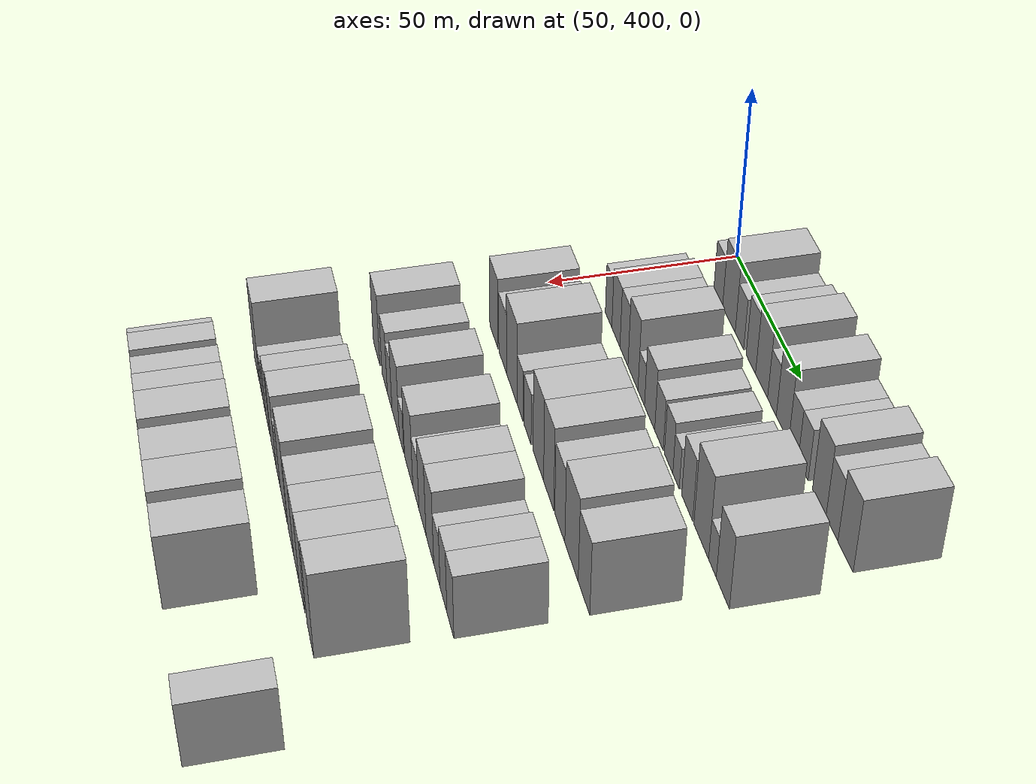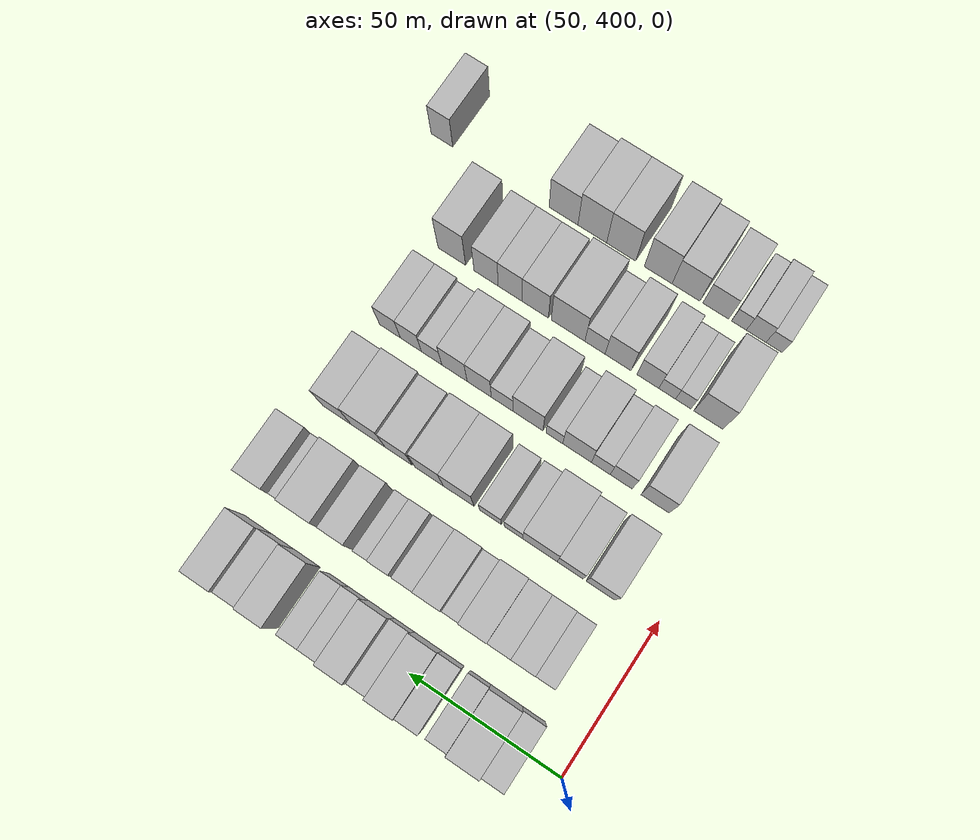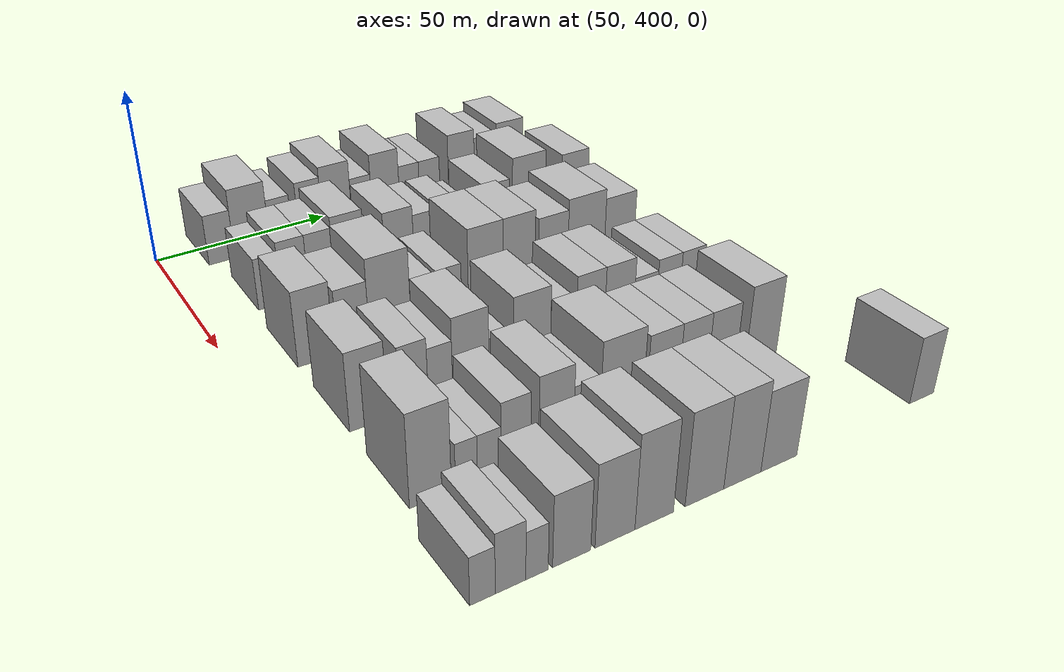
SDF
<sdf version="1.6">
 <world name="default">
  <model name="building_96">
   <static>1</static>
   <pose>50.0000 415.4643 0 0.000000 0.000000 0.000000</pose>
   <link name="link">
    <pose>0 0 7.50 0 0 0</pose>
    <collision name="collision"><geometry><box><size>20.0000 7.4282 15.0000</size></box></geometry></collision>
    <visual name="visual">
     <cast_shadows>0</cast_shadows>
     <geometry><box><size>20.0000 7.4282 15.0000</size></box></geometry>
     <material>
      <script>
       <uri>model://HANNAS_wall/materials/scripts</uri>
       <uri>model://HANNAS_wall/materials/textures</uri>
       <name>vrc/HANNAS_wall</name>
      </script>
     </material>
    </visual>
   </link>
  </model>
  <model name="building_97">
   <static>1</static>
   <pose>50.0000 424.4141 0 0.000000 0.000000 0.000000</pose>
   <link name="link">
    <pose>0 0 10.50 0 0 0</pose>
    <collision name="collision"><geometry><box><size>20.0000 10.4713 21.0000</size></box></geometry></collision>
    <visual name="visual">
     <cast_shadows>0</cast_shadows>
     <geometry><box><size>20.0000 10.4713 21.0000</size></box></geometry>
     <material>
      <script>
       <uri>model://HANNAS_wall/materials/scripts</uri>
       <uri>model://HANNAS_wall/materials/textures</uri>
       <name>vrc/HANNAS_wall</name>
      </script>
     </material>
    </visual>
   </link>
  </model>
  <model name="building_98">
   <static>1</static>
   <pose>50.0000 433.0497 0 0.000000 0.000000 0.000000</pose>
   <link name="link">
    <pose>0 0 7.50 0 0 0</pose>
    <collision name="collision"><geometry><box><size>20.0000 6.7999 15.0000</size></box></geometry></collision>
    <visual name="visual">
     <cast_shadows>0</cast_shadows>
     <geometry><box><size>20.0000 6.7999 15.0000</size></box></geometry>
     <material>
      <script>
       <uri>model://HANNAS_wall/materials/scripts</uri>
       <uri>model://HANNAS_wall/materials/textures</uri>
       <name>vrc/HANNAS_wall</name>
      </script>
     </material>
    </visual>
   </link>
  </model>
  <model name="building_99">
   <static>1</static>
   <pose>50.0000 442.1403 0 0.000000 0.000000 0.000000</pose>
   <link name="link">
    <pose>0 0 9.00 0 0 0</pose>
    <collision name="collision"><geometry><box><size>20.0000 7.3812 18.0000</size></box></geometry></collision>
    <visual name="visual">
     <cast_shadows>0</cast_shadows>
     <geometry><box><size>20.0000 7.3812 18.0000</size></box></geometry>
     <material>
      <script>
       <uri>model://HANNAS_wall/materials/scripts</uri>
       <uri>model://HANNAS_wall/materials/textures</uri>
       <name>vrc/HANNAS_wall</name>
      </script>
     </material>
    </visual>
   </link>
  </model>
  <model name="building_100">
   <static>1</static>
   <pose>50.0000 450.4394 0 0.000000 0.000000 0.000000</pose>
   <link name="link">
    <pose>0 0 10.50 0 0 0</pose>
    <collision name="collision"><geometry><box><size>20.0000 9.2171 21.0000</size></box></geometry></collision>
    <visual name="visual">
     <cast_shadows>0</cast_shadows>
     <geometry><box><size>20.0000 9.2171 21.0000</size></box></geometry>
     <material>
      <script>
       <uri>model://HANNAS_wall/materials/scripts</uri>
       <uri>model://HANNAS_wall/materials/textures</uri>
       <name>vrc/HANNAS_wall</name>
      </script>
     </material>
    </visual>
   </link>
  </model>
  <model name="building_101">
   <static>1</static>
   <pose>50.0000 458.3149 0 0.000000 0.000000 0.000000</pose>
   <link name="link">
    <pose>0 0 7.50 0 0 0</pose>
    <collision name="collision"><geometry><box><size>20.0000 6.5340 15.0000</size></box></geometry></collision>
    <visual name="visual">
     <cast_shadows>0</cast_shadows>
     <geometry><box><size>20.0000 6.5340 15.0000</size></box></geometry>
     <material>
      <script>
       <uri>model://HANNAS_wall/materials/scripts</uri>
       <uri>model://HANNAS_wall/materials/textures</uri>
       <name>vrc/HANNAS_wall</name>
      </script>
     </material>
    </visual>
   </link>
  </model>
  <model name="building_102">
   <static>1</static>
   <pose>50.0000 466.1223 0 0.000000 0.000000 0.000000</pose>
   <link name="link">
    <pose>0 0 10.50 0 0 0</pose>
    <collision name="collision"><geometry><box><size>20.0000 9.0808 21.0000</size></box></geometry></collision>
    <visual name="visual">
     <cast_shadows>0</cast_shadows>
     <geometry><box><size>20.0000 9.0808 21.0000</size></box></geometry>
     <material>
      <script>
       <uri>model://HANNAS_wall/materials/scripts</uri>
       <uri>model://HANNAS_wall/materials/textures</uri>
       <name>vrc/HANNAS_wall</name>
      </script>
     </material>
    </visual>
   </link>
  </model>
  <model name="building_103">
   <static>1</static>
   <pose>50.0000 473.9977 0 0.000000 0.000000 0.000000</pose>
   <link name="link">
    <pose>0 0 7.50 0 0 0</pose>
    <collision name="collision"><geometry><box><size>20.0000 6.6700 15.0000</size></box></geometry></collision>
    <visual name="visual">
     <cast_shadows>0</cast_shadows>
     <geometry><box><size>20.0000 6.6700 15.0000</size></box></geometry>
     <material>
      <script>
       <uri>model://HANNAS_wall/materials/scripts</uri>
       <uri>model://HANNAS_wall/materials/textures</uri>
       <name>vrc/HANNAS_wall</name>
      </script>
     </material>
    </visual>
   </link>
  </model>
  <model name="building_104">
   <static>1</static>
   <pose>50.0000 480.8018 0 0.000000 0.000000 0.000000</pose>
   <link name="link">
    <pose>0 0 7.50 0 0 0</pose>
    <collision name="collision"><geometry><box><size>20.0000 6.9382 15.0000</size></box></geometry></collision>
    <visual name="visual">
     <cast_shadows>0</cast_shadows>
     <geometry><box><size>20.0000 6.9382 15.0000</size></box></geometry>
     <material>
      <script>
       <uri>model://HANNAS_wall/materials/scripts</uri>
       <uri>model://HANNAS_wall/materials/textures</uri>
       <name>vrc/HANNAS_wall</name>
      </script>
     </material>
    </visual>
   </link>
  </model>
  <model name="building_105">
   <static>1</static>
   <pose>50.0000 491.7965 0 0.000000 0.000000 0.000000</pose>
   <link name="link">
    <pose>0 0 10.50 0 0 0</pose>
    <collision name="collision"><geometry><box><size>20.0000 9.0513 21.0000</size></box></geometry></collision>
    <visual name="visual">
     <cast_shadows>0</cast_shadows>
     <geometry><box><size>20.0000 9.0513 21.0000</size></box></geometry>
     <material>
      <script>
       <uri>model://HANNAS_wall/materials/scripts</uri>
       <uri>model://HANNAS_wall/materials/textures</uri>
       <name>vrc/HANNAS_wall</name>
      </script>
     </material>
    </visual>
   </link>
  </model>
  <model name="building_106">
   <static>1</static>
   <pose>50.0000 500.2319 0 0.000000 0.000000 0.000000</pose>
   <link name="link">
    <pose>0 0 9.00 0 0 0</pose>
    <collision name="collision"><geometry><box><size>20.0000 7.8195 18.0000</size></box></geometry></collision>
    <visual name="visual">
     <cast_shadows>0</cast_shadows>
     <geometry><box><size>20.0000 7.8195 18.0000</size></box></geometry>
     <material>
      <script>
       <uri>model://HANNAS_wall/materials/scripts</uri>
       <uri>model://HANNAS_wall/materials/textures</uri>
       <name>vrc/HANNAS_wall</name>
      </script>
     </material>
    </visual>
   </link>
  </model>
  <model name="building_107">
   <static>1</static>
   <pose>50.0000 508.9663 0 0.000000 0.000000 0.000000</pose>
   <link name="link">
    <pose>0 0 10.50 0 0 0</pose>
    <collision name="collision"><geometry><box><size>20.0000 9.6493 21.0000</size></box></geometry></collision>
    <visual name="visual">
     <cast_shadows>0</cast_shadows>
     <geometry><box><size>20.0000 9.6493 21.0000</size></box></geometry>
     <material>
      <script>
       <uri>model://HANNAS_wall/materials/scripts</uri>
       <uri>model://HANNAS_wall/materials/textures</uri>
       <name>vrc/HANNAS_wall</name>
      </script>
     </material>
    </visual>
   </link>
  </model>
  <model name="building_207">
   <static>1</static>
   <pose>79.0000 418.0898 0 0.000000 0.000000 0.000000</pose>
   <link name="link">
    <pose>0 0 7.50 0 0 0</pose>
    <collision name="collision"><geometry><box><size>20.0000 6.3037 15.0000</size></box></geometry></collision>
    <visual name="visual">
     <cast_shadows>0</cast_shadows>
     <geometry><box><size>20.0000 6.3037 15.0000</size></box></geometry>
     <material>
      <script>
       <uri>model://HANNAS_wall/materials/scripts</uri>
       <uri>model://HANNAS_wall/materials/textures</uri>
       <name>vrc/HANNAS_wall</name>
      </script>
     </material>
    </visual>
   </link>
  </model>
  <model name="building_208">
   <static>1</static>
   <pose>79.0000 425.1198 0 0.000000 0.000000 0.000000</pose>
   <link name="link">
    <pose>0 0 9.00 0 0 0</pose>
    <collision name="collision"><geometry><box><size>20.0000 7.7563 18.0000</size></box></geometry></collision>
    <visual name="visual">
     <cast_shadows>0</cast_shadows>
     <geometry><box><size>20.0000 7.7563 18.0000</size></box></geometry>
     <material>
      <script>
       <uri>model://HANNAS_wall/materials/scripts</uri>
       <uri>model://HANNAS_wall/materials/textures</uri>
       <name>vrc/HANNAS_wall</name>
      </script>
     </material>
    </visual>
   </link>
  </model>
  <model name="building_209">
   <static>1</static>
   <pose>79.0000 432.7372 0 0.000000 0.000000 0.000000</pose>
   <link name="link">
    <pose>0 0 9.00 0 0 0</pose>
    <collision name="collision"><geometry><box><size>20.0000 7.4785 18.0000</size></box></geometry></collision>
    <visual name="visual">
     <cast_shadows>0</cast_shadows>
     <geometry><box><size>20.0000 7.4785 18.0000</size></box></geometry>
     <material>
      <script>
       <uri>model://HANNAS_wall/materials/scripts</uri>
       <uri>model://HANNAS_wall/materials/textures</uri>
       <name>vrc/HANNAS_wall</name>
      </script>
     </material>
    </visual>
   </link>
  </model>
  <model name="building_210">
   <static>1</static>
   <pose>79.0000 441.0179 0 0.000000 0.000000 0.000000</pose>
   <link name="link">
    <pose>0 0 10.50 0 0 0</pose>
    <collision name="collision"><geometry><box><size>20.0000 9.0830 21.0000</size></box></geometry></collision>
    <visual name="visual">
     <cast_shadows>0</cast_shadows>
     <geometry><box><size>20.0000 9.0830 21.0000</size></box></geometry>
     <material>
      <script>
       <uri>model://HANNAS_wall/materials/scripts</uri>
       <uri>model://HANNAS_wall/materials/textures</uri>
       <name>vrc/HANNAS_wall</name>
      </script>
     </material>
    </visual>
   </link>
  </model>
  <model name="building_211">
   <static>1</static>
   <pose>79.0000 448.4629 0 0.000000 0.000000 0.000000</pose>
   <link name="link">
    <pose>0 0 6.00 0 0 0</pose>
    <collision name="collision"><geometry><box><size>20.0000 5.8070 12.0000</size></box></geometry></collision>
    <visual name="visual">
     <cast_shadows>0</cast_shadows>
     <geometry><box><size>20.0000 5.8070 12.0000</size></box></geometry>
     <material>
      <script>
       <uri>model://HANNAS_wall/materials/scripts</uri>
       <uri>model://HANNAS_wall/materials/textures</uri>
       <name>vrc/HANNAS_wall</name>
      </script>
     </material>
    </visual>
   </link>
  </model>
  <model name="building_212">
   <static>1</static>
   <pose>79.0000 455.8108 0 0.000000 0.000000 0.000000</pose>
   <link name="link">
    <pose>0 0 9.00 0 0 0</pose>
    <collision name="collision"><geometry><box><size>20.0000 8.8887 18.0000</size></box></geometry></collision>
    <visual name="visual">
     <cast_shadows>0</cast_shadows>
     <geometry><box><size>20.0000 8.8887 18.0000</size></box></geometry>
     <material>
      <script>
       <uri>model://HANNAS_wall/materials/scripts</uri>
       <uri>model://HANNAS_wall/materials/textures</uri>
       <name>vrc/HANNAS_wall</name>
      </script>
     </material>
    </visual>
   </link>
  </model>
  <model name="building_213">
   <static>1</static>
   <pose>79.0000 463.8391 0 0.000000 0.000000 0.000000</pose>
   <link name="link">
    <pose>0 0 7.50 0 0 0</pose>
    <collision name="collision"><geometry><box><size>20.0000 7.1679 15.0000</size></box></geometry></collision>
    <visual name="visual">
     <cast_shadows>0</cast_shadows>
     <geometry><box><size>20.0000 7.1679 15.0000</size></box></geometry>
     <material>
      <script>
       <uri>model://HANNAS_wall/materials/scripts</uri>
       <uri>model://HANNAS_wall/materials/textures</uri>
       <name>vrc/HANNAS_wall</name>
      </script>
     </material>
    </visual>
   </link>
  </model>
  <model name="building_214">
   <static>1</static>
   <pose>79.0000 471.9074 0 0.000000 0.000000 0.000000</pose>
   <link name="link">
    <pose>0 0 7.50 0 0 0</pose>
    <collision name="collision"><geometry><box><size>20.0000 6.9688 15.0000</size></box></geometry></collision>
    <visual name="visual">
     <cast_shadows>0</cast_shadows>
     <geometry><box><size>20.0000 6.9688 15.0000</size></box></geometry>
     <material>
      <script>
       <uri>model://HANNAS_wall/materials/scripts</uri>
       <uri>model://HANNAS_wall/materials/textures</uri>
       <name>vrc/HANNAS_wall</name>
      </script>
     </material>
    </visual>
   </link>
  </model>
  <model name="building_215">
   <static>1</static>
   <pose>79.0000 477.9696 0 0.000000 0.000000 0.000000</pose>
   <link name="link">
    <pose>0 0 6.00 0 0 0</pose>
    <collision name="collision"><geometry><box><size>20.0000 5.1556 12.0000</size></box></geometry></collision>
    <visual name="visual">
     <cast_shadows>0</cast_shadows>
     <geometry><box><size>20.0000 5.1556 12.0000</size></box></geometry>
     <material>
      <script>
       <uri>model://HANNAS_wall/materials/scripts</uri>
       <uri>model://HANNAS_wall/materials/textures</uri>
       <name>vrc/HANNAS_wall</name>
      </script>
     </material>
    </visual>
   </link>
  </model>
  <model name="building_216">
   <static>1</static>
   <pose>79.0000 486.8235 0 0.000000 0.000000 0.000000</pose>
   <link name="link">
    <pose>0 0 9.00 0 0 0</pose>
    <collision name="collision"><geometry><box><size>20.0000 8.5522 18.0000</size></box></geometry></collision>
    <visual name="visual">
     <cast_shadows>0</cast_shadows>
     <geometry><box><size>20.0000 8.5522 18.0000</size></box></geometry>
     <material>
      <script>
       <uri>model://HANNAS_wall/materials/scripts</uri>
       <uri>model://HANNAS_wall/materials/textures</uri>
       <name>vrc/HANNAS_wall</name>
      </script>
     </material>
    </visual>
   </link>
  </model>
  <model name="building_217">
   <static>1</static>
   <pose>79.0000 497.6543 0 0.000000 0.000000 0.000000</pose>
   <link name="link">
    <pose>0 0 12.00 0 0 0</pose>
    <collision name="collision"><geometry><box><size>20.0000 11.1093 24.0000</size></box></geometry></collision>
    <visual name="visual">
     <cast_shadows>0</cast_shadows>
     <geometry><box><size>20.0000 11.1093 24.0000</size></box></geometry>
     <material>
      <script>
       <uri>model://HANNAS_wall/materials/scripts</uri>
       <uri>model://HANNAS_wall/materials/textures</uri>
       <name>vrc/HANNAS_wall</name>
      </script>
     </material>
    </visual>
   </link>
  </model>
  <model name="building_218">
   <static>1</static>
   <pose>79.0000 506.0256 0 0.000000 0.000000 0.000000</pose>
   <link name="link">
    <pose>0 0 6.00 0 0 0</pose>
    <collision name="collision"><geometry><box><size>20.0000 5.6333 12.0000</size></box></geometry></collision>
    <visual name="visual">
     <cast_shadows>0</cast_shadows>
     <geometry><box><size>20.0000 5.6333 12.0000</size></box></geometry>
     <material>
      <script>
       <uri>model://HANNAS_wall/materials/scripts</uri>
       <uri>model://HANNAS_wall/materials/textures</uri>
       <name>vrc/HANNAS_wall</name>
      </script>
     </material>
    </visual>
   </link>
  </model>
  <model name="building_219">
   <static>1</static>
   <pose>79.0000 513.5419 0 0.000000 0.000000 0.000000</pose>
   <link name="link">
    <pose>0 0 10.50 0 0 0</pose>
    <collision name="collision"><geometry><box><size>20.0000 9.3993 21.0000</size></box></geometry></collision>
    <visual name="visual">
     <cast_shadows>0</cast_shadows>
     <geometry><box><size>20.0000 9.3993 21.0000</size></box></geometry>
     <material>
      <script>
       <uri>model://HANNAS_wall/materials/scripts</uri>
       <uri>model://HANNAS_wall/materials/textures</uri>
       <name>vrc/HANNAS_wall</name>
      </script>
     </material>
    </visual>
   </link>
  </model>
  <model name="building_316">
   <static>1</static>
   <pose>108.0000 418.3905 0 0.000000 0.000000 0.000000</pose>
   <link name="link">
    <pose>0 0 10.50 0 0 0</pose>
    <collision name="collision"><geometry><box><size>20.0000 9.4696 21.0000</size></box></geometry></collision>
    <visual name="visual">
     <cast_shadows>0</cast_shadows>
     <geometry><box><size>20.0000 9.4696 21.0000</size></box></geometry>
     <material>
      <script>
       <uri>model://HANNAS_wall/materials/scripts</uri>
       <uri>model://HANNAS_wall/materials/textures</uri>
       <name>vrc/HANNAS_wall</name>
      </script>
     </material>
    </visual>
   </link>
  </model>
  <model name="building_317">
   <static>1</static>
   <pose>108.0000 428.4450 0 0.000000 0.000000 0.000000</pose>
   <link name="link">
    <pose>0 0 9.00 0 0 0</pose>
    <collision name="collision"><geometry><box><size>20.0000 8.6395 18.0000</size></box></geometry></collision>
    <visual name="visual">
     <cast_shadows>0</cast_shadows>
     <geometry><box><size>20.0000 8.6395 18.0000</size></box></geometry>
     <material>
      <script>
       <uri>model://HANNAS_wall/materials/scripts</uri>
       <uri>model://HANNAS_wall/materials/textures</uri>
       <name>vrc/HANNAS_wall</name>
      </script>
     </material>
    </visual>
   </link>
  </model>
  <model name="building_318">
   <static>1</static>
   <pose>108.0000 438.5175 0 0.000000 0.000000 0.000000</pose>
   <link name="link">
    <pose>0 0 12.00 0 0 0</pose>
    <collision name="collision"><geometry><box><size>20.0000 11.5055 24.0000</size></box></geometry></collision>
    <visual name="visual">
     <cast_shadows>0</cast_shadows>
     <geometry><box><size>20.0000 11.5055 24.0000</size></box></geometry>
     <material>
      <script>
       <uri>model://HANNAS_wall/materials/scripts</uri>
       <uri>model://HANNAS_wall/materials/textures</uri>
       <name>vrc/HANNAS_wall</name>
      </script>
     </material>
    </visual>
   </link>
  </model>
  <model name="building_319">
   <static>1</static>
   <pose>108.0000 447.4025 0 0.000000 0.000000 0.000000</pose>
   <link name="link">
    <pose>0 0 7.50 0 0 0</pose>
    <collision name="collision"><geometry><box><size>20.0000 6.2645 15.0000</size></box></geometry></collision>
    <visual name="visual">
     <cast_shadows>0</cast_shadows>
     <geometry><box><size>20.0000 6.2645 15.0000</size></box></geometry>
     <material>
      <script>
       <uri>model://HANNAS_wall/materials/scripts</uri>
       <uri>model://HANNAS_wall/materials/textures</uri>
       <name>vrc/HANNAS_wall</name>
      </script>
     </material>
    </visual>
   </link>
  </model>
  <model name="building_320">
   <static>1</static>
   <pose>108.0000 455.2021 0 0.000000 0.000000 0.000000</pose>
   <link name="link">
    <pose>0 0 7.50 0 0 0</pose>
    <collision name="collision"><geometry><box><size>20.0000 7.3345 15.0000</size></box></geometry></collision>
    <visual name="visual">
     <cast_shadows>0</cast_shadows>
     <geometry><box><size>20.0000 7.3345 15.0000</size></box></geometry>
     <material>
      <script>
       <uri>model://HANNAS_wall/materials/scripts</uri>
       <uri>model://HANNAS_wall/materials/textures</uri>
       <name>vrc/HANNAS_wall</name>
      </script>
     </material>
    </visual>
   </link>
  </model>
  <model name="building_321">
   <static>1</static>
   <pose>108.0000 466.1360 0 0.000000 0.000000 0.000000</pose>
   <link name="link">
    <pose>0 0 12.00 0 0 0</pose>
    <collision name="collision"><geometry><box><size>20.0000 10.5334 24.0000</size></box></geometry></collision>
    <visual name="visual">
     <cast_shadows>0</cast_shadows>
     <geometry><box><size>20.0000 10.5334 24.0000</size></box></geometry>
     <material>
      <script>
       <uri>model://HANNAS_wall/materials/scripts</uri>
       <uri>model://HANNAS_wall/materials/textures</uri>
       <name>vrc/HANNAS_wall</name>
      </script>
     </material>
    </visual>
   </link>
  </model>
  <model name="building_322">
   <static>1</static>
   <pose>108.0000 476.2836 0 0.000000 0.000000 0.000000</pose>
   <link name="link">
    <pose>0 0 12.00 0 0 0</pose>
    <collision name="collision"><geometry><box><size>20.0000 9.7619 24.0000</size></box></geometry></collision>
    <visual name="visual">
     <cast_shadows>0</cast_shadows>
     <geometry><box><size>20.0000 9.7619 24.0000</size></box></geometry>
     <material>
      <script>
       <uri>model://HANNAS_wall/materials/scripts</uri>
       <uri>model://HANNAS_wall/materials/textures</uri>
       <name>vrc/HANNAS_wall</name>
      </script>
     </material>
    </visual>
   </link>
  </model>
  <model name="building_323">
   <static>1</static>
   <pose>108.0000 486.8501 0 0.000000 0.000000 0.000000</pose>
   <link name="link">
    <pose>0 0 10.50 0 0 0</pose>
    <collision name="collision"><geometry><box><size>20.0000 9.3710 21.0000</size></box></geometry></collision>
    <visual name="visual">
     <cast_shadows>0</cast_shadows>
     <geometry><box><size>20.0000 9.3710 21.0000</size></box></geometry>
     <material>
      <script>
       <uri>model://HANNAS_wall/materials/scripts</uri>
       <uri>model://HANNAS_wall/materials/textures</uri>
       <name>vrc/HANNAS_wall</name>
      </script>
     </material>
    </visual>
   </link>
  </model>
  <model name="building_324">
   <static>1</static>
   <pose>108.0000 497.5315 0 0.000000 0.000000 0.000000</pose>
   <link name="link">
    <pose>0 0 12.00 0 0 0</pose>
    <collision name="collision"><geometry><box><size>20.0000 11.9918 24.0000</size></box></geometry></collision>
    <visual name="visual">
     <cast_shadows>0</cast_shadows>
     <geometry><box><size>20.0000 11.9918 24.0000</size></box></geometry>
     <material>
      <script>
       <uri>model://HANNAS_wall/materials/scripts</uri>
       <uri>model://HANNAS_wall/materials/textures</uri>
       <name>vrc/HANNAS_wall</name>
      </script>
     </material>
    </visual>
   </link>
  </model>
  <model name="building_325">
   <static>1</static>
   <pose>108.0000 508.5673 0 0.000000 0.000000 0.000000</pose>
   <link name="link">
    <pose>0 0 10.50 0 0 0</pose>
    <collision name="collision"><geometry><box><size>20.0000 10.0797 21.0000</size></box></geometry></collision>
    <visual name="visual">
     <cast_shadows>0</cast_shadows>
     <geometry><box><size>20.0000 10.0797 21.0000</size></box></geometry>
     <material>
      <script>
       <uri>model://HANNAS_wall/materials/scripts</uri>
       <uri>model://HANNAS_wall/materials/textures</uri>
       <name>vrc/HANNAS_wall</name>
      </script>
     </material>
    </visual>
   </link>
  </model>
  <model name="building_433">
   <static>1</static>
   <pose>137.0000 418.4630 0 0.000000 0.000000 0.000000</pose>
   <link name="link">
    <pose>0 0 10.50 0 0 0</pose>
    <collision name="collision"><geometry><box><size>20.0000 9.3713 21.0000</size></box></geometry></collision>
    <visual name="visual">
     <cast_shadows>0</cast_shadows>
     <geometry><box><size>20.0000 9.3713 21.0000</size></box></geometry>
     <material>
      <script>
       <uri>model://HANNAS_wall/materials/scripts</uri>
       <uri>model://HANNAS_wall/materials/textures</uri>
       <name>vrc/HANNAS_wall</name>
      </script>
     </material>
    </visual>
   </link>
  </model>
  <model name="building_434">
   <static>1</static>
   <pose>137.0000 429.8650 0 0.000000 0.000000 0.000000</pose>
   <link name="link">
    <pose>0 0 9.00 0 0 0</pose>
    <collision name="collision"><geometry><box><size>20.0000 7.4327 18.0000</size></box></geometry></collision>
    <visual name="visual">
     <cast_shadows>0</cast_shadows>
     <geometry><box><size>20.0000 7.4327 18.0000</size></box></geometry>
     <material>
      <script>
       <uri>model://HANNAS_wall/materials/scripts</uri>
       <uri>model://HANNAS_wall/materials/textures</uri>
       <name>vrc/HANNAS_wall</name>
      </script>
     </material>
    </visual>
   </link>
  </model>
  <model name="building_435">
   <static>1</static>
   <pose>137.0000 436.7732 0 0.000000 0.000000 0.000000</pose>
   <link name="link">
    <pose>0 0 7.50 0 0 0</pose>
    <collision name="collision"><geometry><box><size>20.0000 6.3836 15.0000</size></box></geometry></collision>
    <visual name="visual">
     <cast_shadows>0</cast_shadows>
     <geometry><box><size>20.0000 6.3836 15.0000</size></box></geometry>
     <material>
      <script>
       <uri>model://HANNAS_wall/materials/scripts</uri>
       <uri>model://HANNAS_wall/materials/textures</uri>
       <name>vrc/HANNAS_wall</name>
      </script>
     </material>
    </visual>
   </link>
  </model>
  <model name="building_436">
   <static>1</static>
   <pose>137.0000 444.8624 0 0.000000 0.000000 0.000000</pose>
   <link name="link">
    <pose>0 0 10.50 0 0 0</pose>
    <collision name="collision"><geometry><box><size>20.0000 9.7947 21.0000</size></box></geometry></collision>
    <visual name="visual">
     <cast_shadows>0</cast_shadows>
     <geometry><box><size>20.0000 9.7947 21.0000</size></box></geometry>
     <material>
      <script>
       <uri>model://HANNAS_wall/materials/scripts</uri>
       <uri>model://HANNAS_wall/materials/textures</uri>
       <name>vrc/HANNAS_wall</name>
      </script>
     </material>
    </visual>
   </link>
  </model>
  <model name="building_437">
   <static>1</static>
   <pose>137.0000 452.6499 0 0.000000 0.000000 0.000000</pose>
   <link name="link">
    <pose>0 0 6.00 0 0 0</pose>
    <collision name="collision"><geometry><box><size>20.0000 5.7803 12.0000</size></box></geometry></collision>
    <visual name="visual">
     <cast_shadows>0</cast_shadows>
     <geometry><box><size>20.0000 5.7803 12.0000</size></box></geometry>
     <material>
      <script>
       <uri>model://HANNAS_wall/materials/scripts</uri>
       <uri>model://HANNAS_wall/materials/textures</uri>
       <name>vrc/HANNAS_wall</name>
      </script>
     </material>
    </visual>
   </link>
  </model>
  <model name="building_438">
   <static>1</static>
   <pose>137.0000 461.7317 0 0.000000 0.000000 0.000000</pose>
   <link name="link">
    <pose>0 0 10.50 0 0 0</pose>
    <collision name="collision"><geometry><box><size>20.0000 10.3832 21.0000</size></box></geometry></collision>
    <visual name="visual">
     <cast_shadows>0</cast_shadows>
     <geometry><box><size>20.0000 10.3832 21.0000</size></box></geometry>
     <material>
      <script>
       <uri>model://HANNAS_wall/materials/scripts</uri>
       <uri>model://HANNAS_wall/materials/textures</uri>
       <name>vrc/HANNAS_wall</name>
      </script>
     </material>
    </visual>
   </link>
  </model>
  <model name="building_439">
   <static>1</static>
   <pose>137.0000 470.6642 0 0.000000 0.000000 0.000000</pose>
   <link name="link">
    <pose>0 0 7.50 0 0 0</pose>
    <collision name="collision"><geometry><box><size>20.0000 7.4819 15.0000</size></box></geometry></collision>
    <visual name="visual">
     <cast_shadows>0</cast_shadows>
     <geometry><box><size>20.0000 7.4819 15.0000</size></box></geometry>
     <material>
      <script>
       <uri>model://HANNAS_wall/materials/scripts</uri>
       <uri>model://HANNAS_wall/materials/textures</uri>
       <name>vrc/HANNAS_wall</name>
      </script>
     </material>
    </visual>
   </link>
  </model>
  <model name="building_440">
   <static>1</static>
   <pose>137.0000 478.6148 0 0.000000 0.000000 0.000000</pose>
   <link name="link">
    <pose>0 0 10.50 0 0 0</pose>
    <collision name="collision"><geometry><box><size>20.0000 8.4195 21.0000</size></box></geometry></collision>
    <visual name="visual">
     <cast_shadows>0</cast_shadows>
     <geometry><box><size>20.0000 8.4195 21.0000</size></box></geometry>
     <material>
      <script>
       <uri>model://HANNAS_wall/materials/scripts</uri>
       <uri>model://HANNAS_wall/materials/textures</uri>
       <name>vrc/HANNAS_wall</name>
      </script>
     </material>
    </visual>
   </link>
  </model>
  <model name="building_441">
   <static>1</static>
   <pose>137.0000 487.2848 0 0.000000 0.000000 0.000000</pose>
   <link name="link">
    <pose>0 0 10.50 0 0 0</pose>
    <collision name="collision"><geometry><box><size>20.0000 8.9204 21.0000</size></box></geometry></collision>
    <visual name="visual">
     <cast_shadows>0</cast_shadows>
     <geometry><box><size>20.0000 8.9204 21.0000</size></box></geometry>
     <material>
      <script>
       <uri>model://HANNAS_wall/materials/scripts</uri>
       <uri>model://HANNAS_wall/materials/textures</uri>
       <name>vrc/HANNAS_wall</name>
      </script>
     </material>
    </visual>
   </link>
  </model>
  <model name="building_442">
   <static>1</static>
   <pose>137.0000 495.3373 0 0.000000 0.000000 0.000000</pose>
   <link name="link">
    <pose>0 0 7.50 0 0 0</pose>
    <collision name="collision"><geometry><box><size>20.0000 7.1847 15.0000</size></box></geometry></collision>
    <visual name="visual">
     <cast_shadows>0</cast_shadows>
     <geometry><box><size>20.0000 7.1847 15.0000</size></box></geometry>
     <material>
      <script>
       <uri>model://HANNAS_wall/materials/scripts</uri>
       <uri>model://HANNAS_wall/materials/textures</uri>
       <name>vrc/HANNAS_wall</name>
      </script>
     </material>
    </visual>
   </link>
  </model>
  <model name="building_443">
   <static>1</static>
   <pose>137.0000 502.6443 0 0.000000 0.000000 0.000000</pose>
   <link name="link">
    <pose>0 0 9.00 0 0 0</pose>
    <collision name="collision"><geometry><box><size>20.0000 7.4293 18.0000</size></box></geometry></collision>
    <visual name="visual">
     <cast_shadows>0</cast_shadows>
     <geometry><box><size>20.0000 7.4293 18.0000</size></box></geometry>
     <material>
      <script>
       <uri>model://HANNAS_wall/materials/scripts</uri>
       <uri>model://HANNAS_wall/materials/textures</uri>
       <name>vrc/HANNAS_wall</name>
      </script>
     </material>
    </visual>
   </link>
  </model>
  <model name="building_444">
   <static>1</static>
   <pose>137.0000 510.1110 0 0.000000 0.000000 0.000000</pose>
   <link name="link">
    <pose>0 0 9.00 0 0 0</pose>
    <collision name="collision"><geometry><box><size>20.0000 7.5041 18.0000</size></box></geometry></collision>
    <visual name="visual">
     <cast_shadows>0</cast_shadows>
     <geometry><box><size>20.0000 7.5041 18.0000</size></box></geometry>
     <material>
      <script>
       <uri>model://HANNAS_wall/materials/scripts</uri>
       <uri>model://HANNAS_wall/materials/textures</uri>
       <name>vrc/HANNAS_wall</name>
      </script>
     </material>
    </visual>
   </link>
  </model>
  <model name="building_552">
   <static>1</static>
   <pose>166.0000 418.5225 0 0.000000 0.000000 0.000000</pose>
   <link name="link">
    <pose>0 0 12.00 0 0 0</pose>
    <collision name="collision"><geometry><box><size>20.0000 9.7763 24.0000</size></box></geometry></collision>
    <visual name="visual">
     <cast_shadows>0</cast_shadows>
     <geometry><box><size>20.0000 9.7763 24.0000</size></box></geometry>
     <material>
      <script>
       <uri>model://HANNAS_wall/materials/scripts</uri>
       <uri>model://HANNAS_wall/materials/textures</uri>
       <name>vrc/HANNAS_wall</name>
      </script>
     </material>
    </visual>
   </link>
  </model>
  <model name="building_553">
   <static>1</static>
   <pose>166.0000 427.0338 0 0.000000 0.000000 0.000000</pose>
   <link name="link">
    <pose>0 0 6.00 0 0 0</pose>
    <collision name="collision"><geometry><box><size>20.0000 5.2463 12.0000</size></box></geometry></collision>
    <visual name="visual">
     <cast_shadows>0</cast_shadows>
     <geometry><box><size>20.0000 5.2463 12.0000</size></box></geometry>
     <material>
      <script>
       <uri>model://HANNAS_wall/materials/scripts</uri>
       <uri>model://HANNAS_wall/materials/textures</uri>
       <name>vrc/HANNAS_wall</name>
      </script>
     </material>
    </visual>
   </link>
  </model>
  <model name="building_554">
   <static>1</static>
   <pose>166.0000 432.5258 0 0.000000 0.000000 0.000000</pose>
   <link name="link">
    <pose>0 0 6.00 0 0 0</pose>
    <collision name="collision"><geometry><box><size>20.0000 5.7378 12.0000</size></box></geometry></collision>
    <visual name="visual">
     <cast_shadows>0</cast_shadows>
     <geometry><box><size>20.0000 5.7378 12.0000</size></box></geometry>
     <material>
      <script>
       <uri>model://HANNAS_wall/materials/scripts</uri>
       <uri>model://HANNAS_wall/materials/textures</uri>
       <name>vrc/HANNAS_wall</name>
      </script>
     </material>
    </visual>
   </link>
  </model>
  <model name="building_555">
   <static>1</static>
   <pose>166.0000 439.1439 0 0.000000 0.000000 0.000000</pose>
   <link name="link">
    <pose>0 0 9.00 0 0 0</pose>
    <collision name="collision"><geometry><box><size>20.0000 7.4983 18.0000</size></box></geometry></collision>
    <visual name="visual">
     <cast_shadows>0</cast_shadows>
     <geometry><box><size>20.0000 7.4983 18.0000</size></box></geometry>
     <material>
      <script>
       <uri>model://HANNAS_wall/materials/scripts</uri>
       <uri>model://HANNAS_wall/materials/textures</uri>
       <name>vrc/HANNAS_wall</name>
      </script>
     </material>
    </visual>
   </link>
  </model>
  <model name="building_556">
   <static>1</static>
   <pose>166.0000 449.3823 0 0.000000 0.000000 0.000000</pose>
   <link name="link">
    <pose>0 0 10.50 0 0 0</pose>
    <collision name="collision"><geometry><box><size>20.0000 8.9785 21.0000</size></box></geometry></collision>
    <visual name="visual">
     <cast_shadows>0</cast_shadows>
     <geometry><box><size>20.0000 8.9785 21.0000</size></box></geometry>
     <material>
      <script>
       <uri>model://HANNAS_wall/materials/scripts</uri>
       <uri>model://HANNAS_wall/materials/textures</uri>
       <name>vrc/HANNAS_wall</name>
      </script>
     </material>
    </visual>
   </link>
  </model>
  <model name="building_557">
   <static>1</static>
   <pose>166.0000 457.3871 0 0.000000 0.000000 0.000000</pose>
   <link name="link">
    <pose>0 0 7.50 0 0 0</pose>
    <collision name="collision"><geometry><box><size>20.0000 7.0310 15.0000</size></box></geometry></collision>
    <visual name="visual">
     <cast_shadows>0</cast_shadows>
     <geometry><box><size>20.0000 7.0310 15.0000</size></box></geometry>
     <material>
      <script>
       <uri>model://HANNAS_wall/materials/scripts</uri>
       <uri>model://HANNAS_wall/materials/textures</uri>
       <name>vrc/HANNAS_wall</name>
      </script>
     </material>
    </visual>
   </link>
  </model>
  <model name="building_558">
   <static>1</static>
   <pose>166.0000 466.7992 0 0.000000 0.000000 0.000000</pose>
   <link name="link">
    <pose>0 0 12.00 0 0 0</pose>
    <collision name="collision"><geometry><box><size>20.0000 11.7932 24.0000</size></box></geometry></collision>
    <visual name="visual">
     <cast_shadows>0</cast_shadows>
     <geometry><box><size>20.0000 11.7932 24.0000</size></box></geometry>
     <material>
      <script>
       <uri>model://HANNAS_wall/materials/scripts</uri>
       <uri>model://HANNAS_wall/materials/textures</uri>
       <name>vrc/HANNAS_wall</name>
      </script>
     </material>
    </visual>
   </link>
  </model>
  <model name="building_559">
   <static>1</static>
   <pose>166.0000 478.3181 0 0.000000 0.000000 0.000000</pose>
   <link name="link">
    <pose>0 0 10.50 0 0 0</pose>
    <collision name="collision"><geometry><box><size>20.0000 9.2445 21.0000</size></box></geometry></collision>
    <visual name="visual">
     <cast_shadows>0</cast_shadows>
     <geometry><box><size>20.0000 9.2445 21.0000</size></box></geometry>
     <material>
      <script>
       <uri>model://HANNAS_wall/materials/scripts</uri>
       <uri>model://HANNAS_wall/materials/textures</uri>
       <name>vrc/HANNAS_wall</name>
      </script>
     </material>
    </visual>
   </link>
  </model>
  <model name="building_560">
   <static>1</static>
   <pose>166.0000 487.1629 0 0.000000 0.000000 0.000000</pose>
   <link name="link">
    <pose>0 0 10.50 0 0 0</pose>
    <collision name="collision"><geometry><box><size>20.0000 8.4451 21.0000</size></box></geometry></collision>
    <visual name="visual">
     <cast_shadows>0</cast_shadows>
     <geometry><box><size>20.0000 8.4451 21.0000</size></box></geometry>
     <material>
      <script>
       <uri>model://HANNAS_wall/materials/scripts</uri>
       <uri>model://HANNAS_wall/materials/textures</uri>
       <name>vrc/HANNAS_wall</name>
      </script>
     </material>
    </visual>
   </link>
  </model>
  <model name="building_561">
   <static>1</static>
   <pose>166.0000 495.7039 0 0.000000 0.000000 0.000000</pose>
   <link name="link">
    <pose>0 0 10.50 0 0 0</pose>
    <collision name="collision"><geometry><box><size>20.0000 8.6369 21.0000</size></box></geometry></collision>
    <visual name="visual">
     <cast_shadows>0</cast_shadows>
     <geometry><box><size>20.0000 8.6369 21.0000</size></box></geometry>
     <material>
      <script>
       <uri>model://HANNAS_wall/materials/scripts</uri>
       <uri>model://HANNAS_wall/materials/textures</uri>
       <name>vrc/HANNAS_wall</name>
      </script>
     </material>
    </visual>
   </link>
  </model>
  <model name="building_562">
   <static>1</static>
   <pose>166.0000 507.9677 0 0.000000 0.000000 0.000000</pose>
   <link name="link">
    <pose>0 0 12.00 0 0 0</pose>
    <collision name="collision"><geometry><box><size>20.0000 9.8906 24.0000</size></box></geometry></collision>
    <visual name="visual">
     <cast_shadows>0</cast_shadows>
     <geometry><box><size>20.0000 9.8906 24.0000</size></box></geometry>
     <material>
      <script>
       <uri>model://HANNAS_wall/materials/scripts</uri>
       <uri>model://HANNAS_wall/materials/textures</uri>
       <name>vrc/HANNAS_wall</name>
      </script>
     </material>
    </visual>
   </link>
  </model>
  <model name="building_670">
   <static>1</static>
   <pose>195.0000 413.8020 0 0.000000 0.000000 0.000000</pose>
   <link name="link">
    <pose>0 0 6.00 0 0 0</pose>
    <collision name="collision"><geometry><box><size>20.0000 5.5128 12.0000</size></box></geometry></collision>
    <visual name="visual">
     <cast_shadows>0</cast_shadows>
     <geometry><box><size>20.0000 5.5128 12.0000</size></box></geometry>
     <material>
      <script>
       <uri>model://HANNAS_wall/materials/scripts</uri>
       <uri>model://HANNAS_wall/materials/textures</uri>
       <name>vrc/HANNAS_wall</name>
      </script>
     </material>
    </visual>
   </link>
  </model>
  <model name="building_671">
   <static>1</static>
   <pose>195.0000 419.9139 0 0.000000 0.000000 0.000000</pose>
   <link name="link">
    <pose>0 0 7.50 0 0 0</pose>
    <collision name="collision"><geometry><box><size>20.0000 6.7110 15.0000</size></box></geometry></collision>
    <visual name="visual">
     <cast_shadows>0</cast_shadows>
     <geometry><box><size>20.0000 6.7110 15.0000</size></box></geometry>
     <material>
      <script>
       <uri>model://HANNAS_wall/materials/scripts</uri>
       <uri>model://HANNAS_wall/materials/textures</uri>
       <name>vrc/HANNAS_wall</name>
      </script>
     </material>
    </visual>
   </link>
  </model>
  <model name="building_672">
   <static>1</static>
   <pose>195.0000 425.7999 0 0.000000 0.000000 0.000000</pose>
   <link name="link">
    <pose>0 0 6.00 0 0 0</pose>
    <collision name="collision"><geometry><box><size>20.0000 5.0609 12.0000</size></box></geometry></collision>
    <visual name="visual">
     <cast_shadows>0</cast_shadows>
     <geometry><box><size>20.0000 5.0609 12.0000</size></box></geometry>
     <material>
      <script>
       <uri>model://HANNAS_wall/materials/scripts</uri>
       <uri>model://HANNAS_wall/materials/textures</uri>
       <name>vrc/HANNAS_wall</name>
      </script>
     </material>
    </visual>
   </link>
  </model>
  <model name="building_673">
   <static>1</static>
   <pose>195.0000 433.7802 0 0.000000 0.000000 0.000000</pose>
   <link name="link">
    <pose>0 0 9.00 0 0 0</pose>
    <collision name="collision"><geometry><box><size>20.0000 8.8998 18.0000</size></box></geometry></collision>
    <visual name="visual">
     <cast_shadows>0</cast_shadows>
     <geometry><box><size>20.0000 8.8998 18.0000</size></box></geometry>
     <material>
      <script>
       <uri>model://HANNAS_wall/materials/scripts</uri>
       <uri>model://HANNAS_wall/materials/textures</uri>
       <name>vrc/HANNAS_wall</name>
      </script>
     </material>
    </visual>
   </link>
  </model>
  <model name="building_674">
   <static>1</static>
   <pose>195.0000 444.0809 0 0.000000 0.000000 0.000000</pose>
   <link name="link">
    <pose>0 0 10.50 0 0 0</pose>
    <collision name="collision"><geometry><box><size>20.0000 9.7016 21.0000</size></box></geometry></collision>
    <visual name="visual">
     <cast_shadows>0</cast_shadows>
     <geometry><box><size>20.0000 9.7016 21.0000</size></box></geometry>
     <material>
      <script>
       <uri>model://HANNAS_wall/materials/scripts</uri>
       <uri>model://HANNAS_wall/materials/textures</uri>
       <name>vrc/HANNAS_wall</name>
      </script>
     </material>
    </visual>
   </link>
  </model>
  <model name="building_675">
   <static>1</static>
   <pose>195.0000 453.7893 0 0.000000 0.000000 0.000000</pose>
   <link name="link">
    <pose>0 0 12.00 0 0 0</pose>
    <collision name="collision"><geometry><box><size>20.0000 9.7152 24.0000</size></box></geometry></collision>
    <visual name="visual">
     <cast_shadows>0</cast_shadows>
     <geometry><box><size>20.0000 9.7152 24.0000</size></box></geometry>
     <material>
      <script>
       <uri>model://HANNAS_wall/materials/scripts</uri>
       <uri>model://HANNAS_wall/materials/textures</uri>
       <name>vrc/HANNAS_wall</name>
      </script>
     </material>
    </visual>
   </link>
  </model>
  <model name="building_676">
   <static>1</static>
   <pose>195.0000 466.7747 0 0.000000 0.000000 0.000000</pose>
   <link name="link">
    <pose>0 0 12.00 0 0 0</pose>
    <collision name="collision"><geometry><box><size>20.0000 10.2557 24.0000</size></box></geometry></collision>
    <visual name="visual">
     <cast_shadows>0</cast_shadows>
     <geometry><box><size>20.0000 10.2557 24.0000</size></box></geometry>
     <material>
      <script>
       <uri>model://HANNAS_wall/materials/scripts</uri>
       <uri>model://HANNAS_wall/materials/textures</uri>
       <name>vrc/HANNAS_wall</name>
      </script>
     </material>
    </visual>
   </link>
  </model>
  <model name="building_677">
   <static>1</static>
   <pose>195.0000 477.0072 0 0.000000 0.000000 0.000000</pose>
   <link name="link">
    <pose>0 0 12.00 0 0 0</pose>
    <collision name="collision"><geometry><box><size>20.0000 10.2091 24.0000</size></box></geometry></collision>
    <visual name="visual">
     <cast_shadows>0</cast_shadows>
     <geometry><box><size>20.0000 10.2091 24.0000</size></box></geometry>
     <material>
      <script>
       <uri>model://HANNAS_wall/materials/scripts</uri>
       <uri>model://HANNAS_wall/materials/textures</uri>
       <name>vrc/HANNAS_wall</name>
      </script>
     </material>
    </visual>
   </link>
  </model>
  <model name="building_678">
   <static>1</static>
   <pose>195.0000 487.2616 0 0.000000 0.000000 0.000000</pose>
   <link name="link">
    <pose>0 0 10.50 0 0 0</pose>
    <collision name="collision"><geometry><box><size>20.0000 10.2997 21.0000</size></box></geometry></collision>
    <visual name="visual">
     <cast_shadows>0</cast_shadows>
     <geometry><box><size>20.0000 10.2997 21.0000</size></box></geometry>
     <material>
      <script>
       <uri>model://HANNAS_wall/materials/scripts</uri>
       <uri>model://HANNAS_wall/materials/textures</uri>
       <name>vrc/HANNAS_wall</name>
      </script>
     </material>
    </visual>
   </link>
  </model>
  <model name="building_679">
   <static>1</static>
   <pose>195.0000 531.3412 0 0.000000 0.000000 0.000000</pose>
   <link name="link">
    <pose>0 0 9.00 0 0 0</pose>
    <collision name="collision"><geometry><box><size>20.0000 7.9532 18.0000</size></box></geometry></collision>
    <visual name="visual">
     <cast_shadows>0</cast_shadows>
     <geometry><box><size>20.0000 7.9532 18.0000</size></box></geometry>
     <material>
      <script>
       <uri>model://HANNAS_wall/materials/scripts</uri>
       <uri>model://HANNAS_wall/materials/textures</uri>
       <name>vrc/HANNAS_wall</name>
      </script>
     </material>
    </visual>
   </link>
  </model>
 </world>
</sdf>
